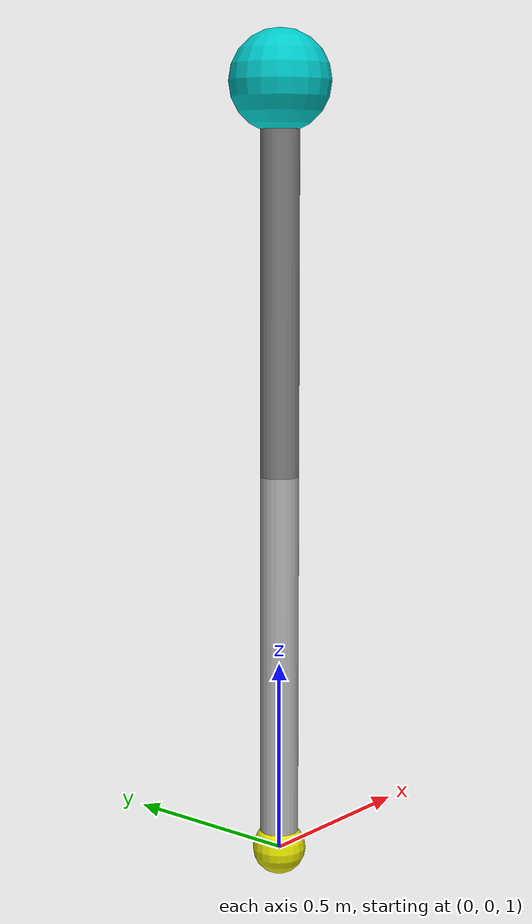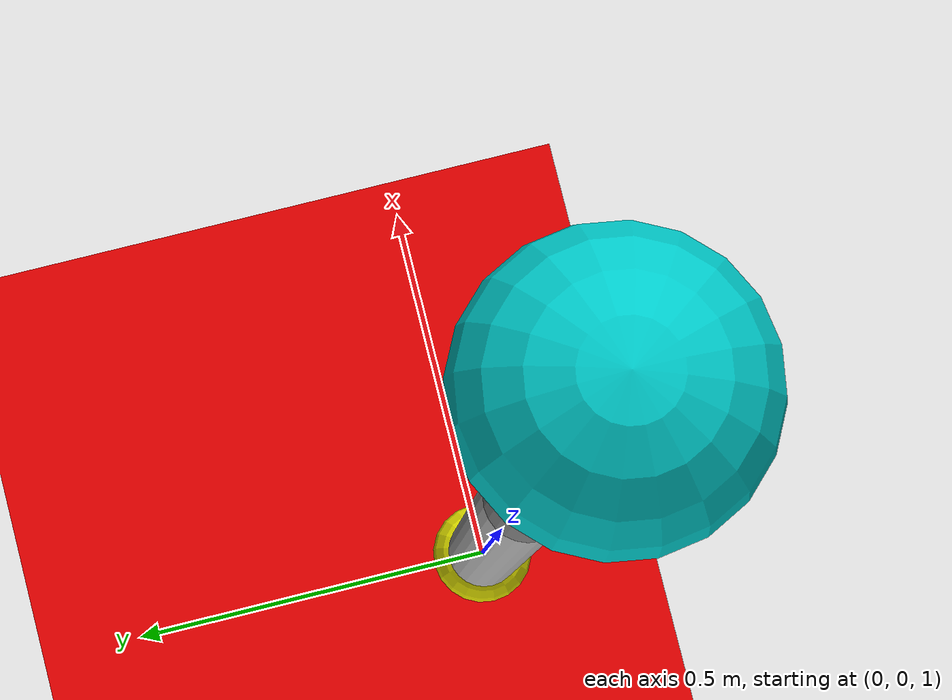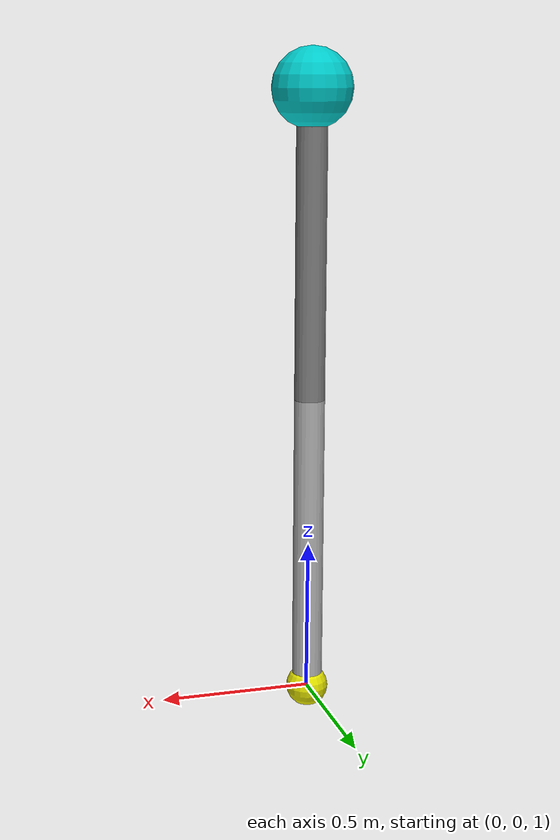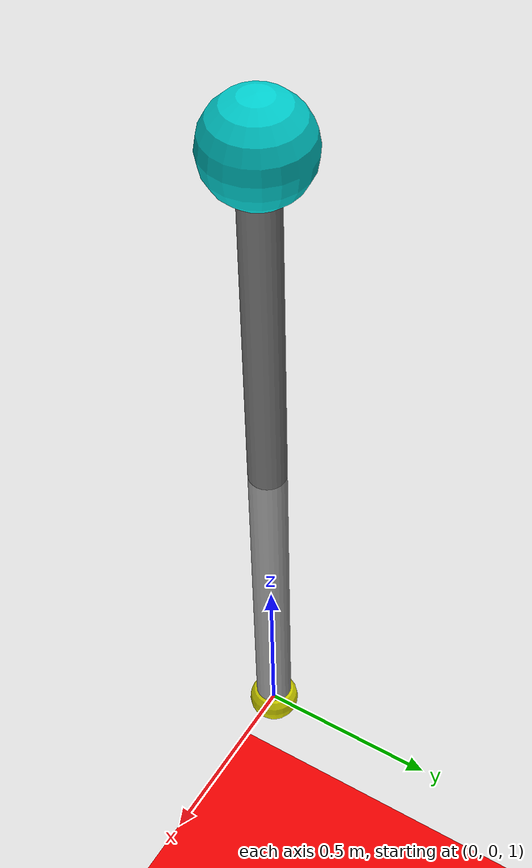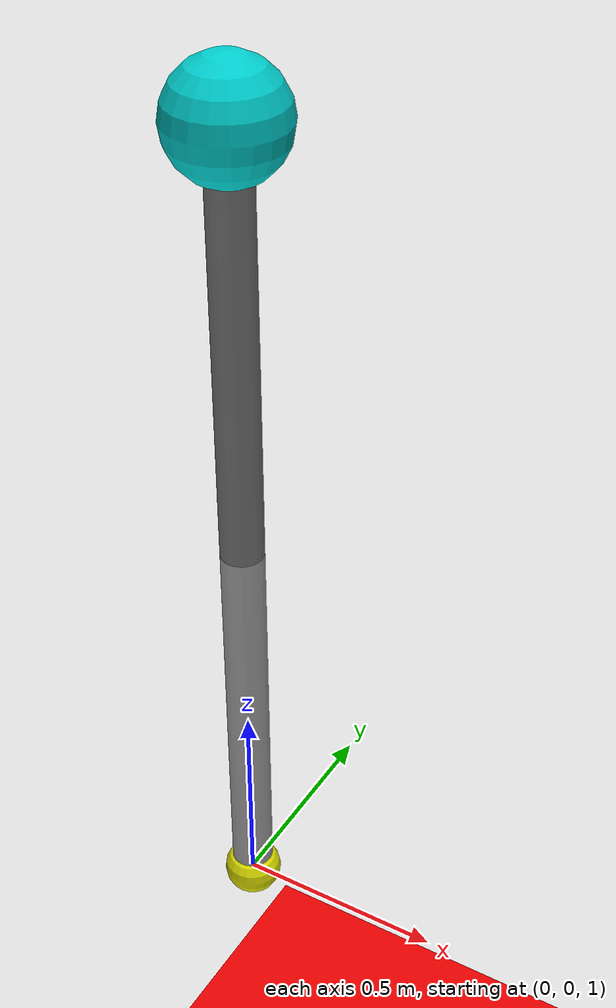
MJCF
<mujoco>
	<visual>
		<headlight ambient="0.5 0.5 0.5" />
	</visual>
	<option timestep="0.001" integrator="RK4" >
		<flag sensornoise="enable" energy="enable" contact="enable" />
	</option>
	<worldbody>
        <light diffuse=".5 .5 .5" pos="0 0 3" dir="0 0 -1"/>
		<geom type="plane" size="2 1 0.1" rgba=".9 0 0 1"/>
		<body pos="0 0 2.5" euler="0 180 0">

			<joint name="z"  type="slide"  axis="0 0 1" />
				<geom name="torso" type="sphere" size="0.13" pos="0 0 -0.5" rgba="0 .8 .8 1" mass="5"/>

			<body name = "thigh"  pos="0 0 0">
				<joint name="hip" type="hinge" axis = "0 -1 0"  pos="0 0 -0.5"/>
					<geom name="upper" type="cylinder" size="0.05 0.5" rgba="0.5 .5 0.5 1" mass=".5"/>

				<body pos="0 0 1" euler="0 0 0">
					<joint name="knee" type="hinge" axis = "0 -1 0" pos="0 0 -0.5"/>
						<geom name="lower" type="cylinder" size="0.05 0.5" rgba="0.7 0.7 .7 1" mass=".5"/>
						<body pos="0 0 0.5" name="foot">
							<geom name="toe" type="sphere" size="0.07"  rgba="0.9 0.9 0 1" mass="0.1"/>
						</body>
				</body>
			</body>
		</body>
	</worldbody>

	<actuator>
		<motor joint="hip" name="Thigh Torque"/>
		<motor joint="knee" name="Knee Torque"/>
	</actuator>
</mujoco>
